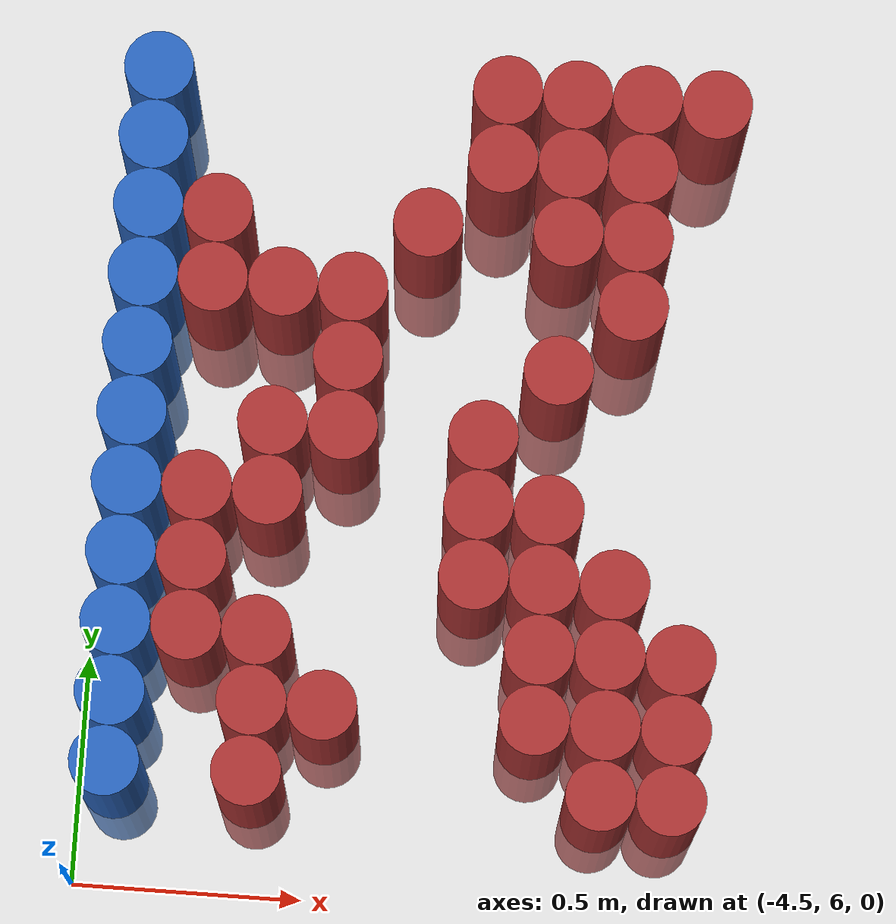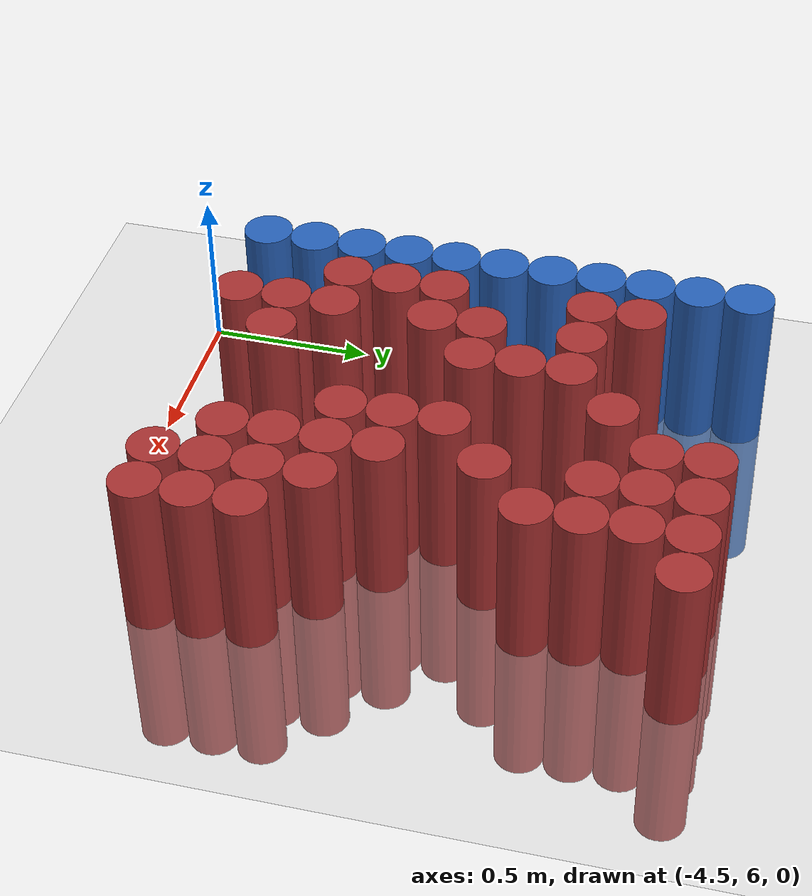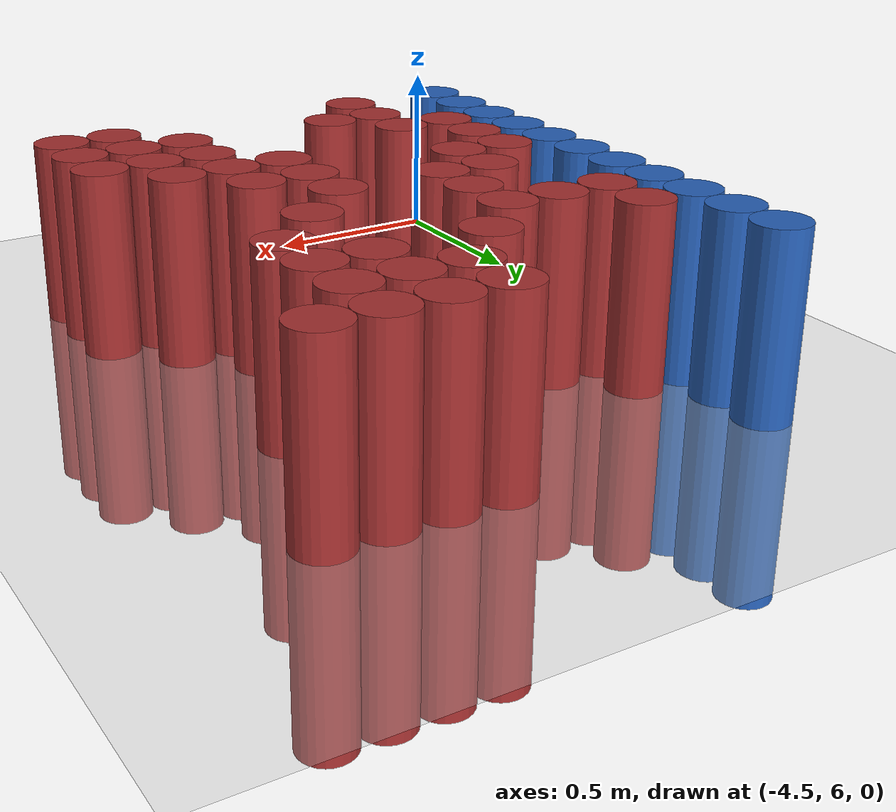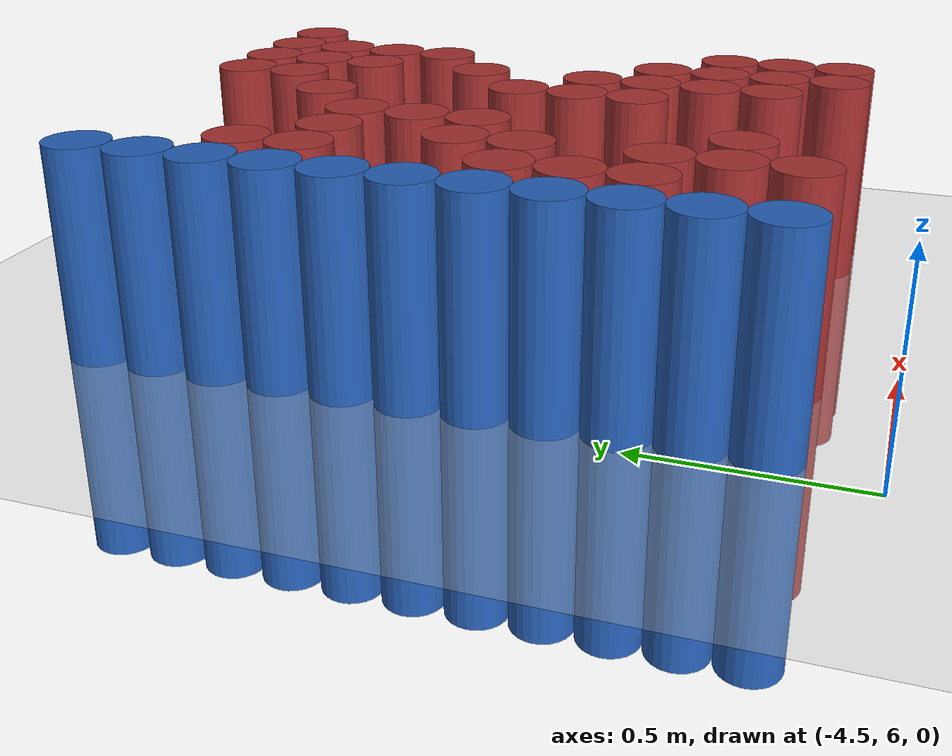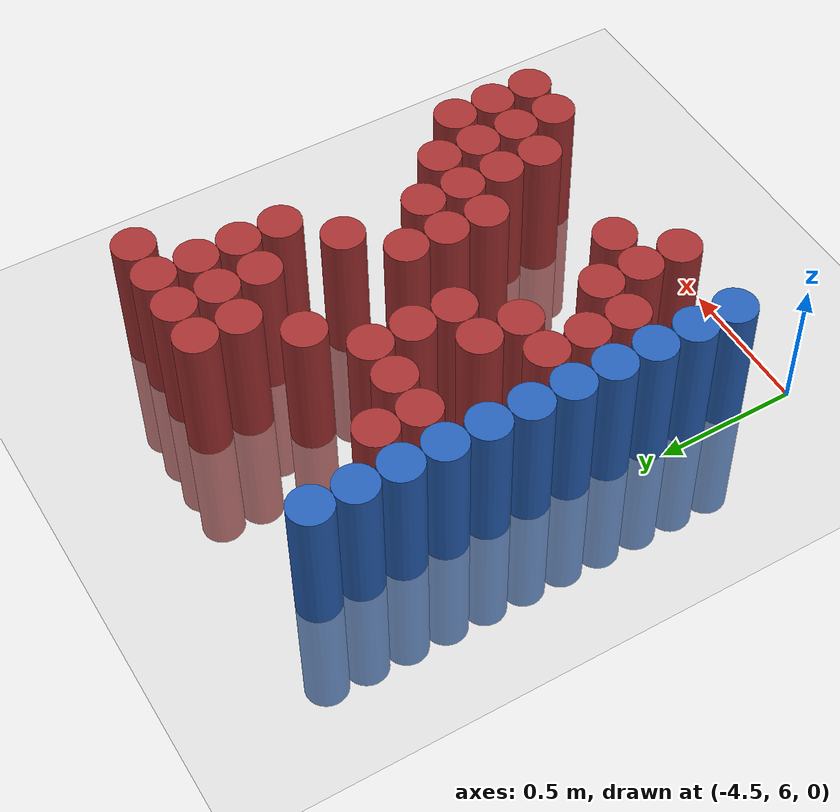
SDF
<sdf version="1.6">
 <world name="default">
  <model name="ground_plane">
   <static>1</static>
   <link name="link">
    <collision name="collision">
     <geometry><plane><normal>0 0 1</normal><size>100 100</size></plane></geometry>
     <surface><friction><ode><mu>100</mu><mu2>50</mu2></ode></friction></surface>
    </collision>
    <visual name="visual">
     <cast_shadows>0</cast_shadows>
     <geometry><plane><normal>0 0 1</normal><size>100 100</size></plane></geometry>
     <material>
      <script><uri>file://media/materials/scripts/gazebo.material</uri><name>Gazebo/Grey</name></script>
     </material>
    </visual>
   </link>
  </model>
  <model name="unit_cylinder_103">
   <static>1</static>
   <pose>-4.425000 6.225000 0.000000 0.000000 0.000000 0.000000</pose>
   <link name="link">
    <inertial>
     <mass>1</mass>
     <inertia><ixx>0.145833</ixx><ixy>0</ixy><ixz>0</ixz><iyy>0.145833</iyy><iyz>0</iyz><izz>0.125</izz></inertia>
    </inertial>
    <collision name="collision">
     <geometry><cylinder><radius>0.075000</radius><length>1</length></cylinder></geometry>
    </collision>
    <visual name="visual">
     <geometry><cylinder><radius>0.075000</radius><length>1</length></cylinder></geometry>
     <material>
      <ambient>0.152000 0.379000 0.720000 1</ambient>
      <diffuse>0.152000 0.379000 0.720000 1</diffuse>
     </material>
     <material>
      <script><name>Gazebo/Grey</name><uri>file://media/materials/scripts/gazebo.material</uri></script>
     </material>
    </visual>
   </link>
  </model>
  <model name="unit_cylinder_104">
   <static>1</static>
   <pose>-4.425000 6.375000 0.000000 0.000000 0.000000 0.000000</pose>
   <link name="link">
    <inertial>
     <mass>1</mass>
     <inertia><ixx>0.145833</ixx><ixy>0</ixy><ixz>0</ixz><iyy>0.145833</iyy><iyz>0</iyz><izz>0.125</izz></inertia>
    </inertial>
    <collision name="collision">
     <geometry><cylinder><radius>0.075000</radius><length>1</length></cylinder></geometry>
    </collision>
    <visual name="visual">
     <geometry><cylinder><radius>0.075000</radius><length>1</length></cylinder></geometry>
     <material>
      <ambient>0.152000 0.379000 0.720000 1</ambient>
      <diffuse>0.152000 0.379000 0.720000 1</diffuse>
     </material>
     <material>
      <script><name>Gazebo/Grey</name><uri>file://media/materials/scripts/gazebo.material</uri></script>
     </material>
    </visual>
   </link>
  </model>
  <model name="unit_cylinder_105">
   <static>1</static>
   <pose>-4.425000 6.525000 0.000000 0.000000 0.000000 0.000000</pose>
   <link name="link">
    <inertial>
     <mass>1</mass>
     <inertia><ixx>0.145833</ixx><ixy>0</ixy><ixz>0</ixz><iyy>0.145833</iyy><iyz>0</iyz><izz>0.125</izz></inertia>
    </inertial>
    <collision name="collision">
     <geometry><cylinder><radius>0.075000</radius><length>1</length></cylinder></geometry>
    </collision>
    <visual name="visual">
     <geometry><cylinder><radius>0.075000</radius><length>1</length></cylinder></geometry>
     <material>
      <ambient>0.152000 0.379000 0.720000 1</ambient>
      <diffuse>0.152000 0.379000 0.720000 1</diffuse>
     </material>
     <material>
      <script><name>Gazebo/Grey</name><uri>file://media/materials/scripts/gazebo.material</uri></script>
     </material>
    </visual>
   </link>
  </model>
  <model name="unit_cylinder_106">
   <static>1</static>
   <pose>-4.425000 6.675000 0.000000 0.000000 0.000000 0.000000</pose>
   <link name="link">
    <inertial>
     <mass>1</mass>
     <inertia><ixx>0.145833</ixx><ixy>0</ixy><ixz>0</ixz><iyy>0.145833</iyy><iyz>0</iyz><izz>0.125</izz></inertia>
    </inertial>
    <collision name="collision">
     <geometry><cylinder><radius>0.075000</radius><length>1</length></cylinder></geometry>
    </collision>
    <visual name="visual">
     <geometry><cylinder><radius>0.075000</radius><length>1</length></cylinder></geometry>
     <material>
      <ambient>0.152000 0.379000 0.720000 1</ambient>
      <diffuse>0.152000 0.379000 0.720000 1</diffuse>
     </material>
     <material>
      <script><name>Gazebo/Grey</name><uri>file://media/materials/scripts/gazebo.material</uri></script>
     </material>
    </visual>
   </link>
  </model>
  <model name="unit_cylinder_107">
   <static>1</static>
   <pose>-4.425000 6.825000 0.000000 0.000000 0.000000 0.000000</pose>
   <link name="link">
    <inertial>
     <mass>1</mass>
     <inertia><ixx>0.145833</ixx><ixy>0</ixy><ixz>0</ixz><iyy>0.145833</iyy><iyz>0</iyz><izz>0.125</izz></inertia>
    </inertial>
    <collision name="collision">
     <geometry><cylinder><radius>0.075000</radius><length>1</length></cylinder></geometry>
    </collision>
    <visual name="visual">
     <geometry><cylinder><radius>0.075000</radius><length>1</length></cylinder></geometry>
     <material>
      <ambient>0.152000 0.379000 0.720000 1</ambient>
      <diffuse>0.152000 0.379000 0.720000 1</diffuse>
     </material>
     <material>
      <script><name>Gazebo/Grey</name><uri>file://media/materials/scripts/gazebo.material</uri></script>
     </material>
    </visual>
   </link>
  </model>
  <model name="unit_cylinder_108">
   <static>1</static>
   <pose>-4.425000 6.975000 0.000000 0.000000 0.000000 0.000000</pose>
   <link name="link">
    <inertial>
     <mass>1</mass>
     <inertia><ixx>0.145833</ixx><ixy>0</ixy><ixz>0</ixz><iyy>0.145833</iyy><iyz>0</iyz><izz>0.125</izz></inertia>
    </inertial>
    <collision name="collision">
     <geometry><cylinder><radius>0.075000</radius><length>1</length></cylinder></geometry>
    </collision>
    <visual name="visual">
     <geometry><cylinder><radius>0.075000</radius><length>1</length></cylinder></geometry>
     <material>
      <ambient>0.152000 0.379000 0.720000 1</ambient>
      <diffuse>0.152000 0.379000 0.720000 1</diffuse>
     </material>
     <material>
      <script><name>Gazebo/Grey</name><uri>file://media/materials/scripts/gazebo.material</uri></script>
     </material>
    </visual>
   </link>
  </model>
  <model name="unit_cylinder_109">
   <static>1</static>
   <pose>-4.425000 7.125000 0.000000 0.000000 0.000000 0.000000</pose>
   <link name="link">
    <inertial>
     <mass>1</mass>
     <inertia><ixx>0.145833</ixx><ixy>0</ixy><ixz>0</ixz><iyy>0.145833</iyy><iyz>0</iyz><izz>0.125</izz></inertia>
    </inertial>
    <collision name="collision">
     <geometry><cylinder><radius>0.075000</radius><length>1</length></cylinder></geometry>
    </collision>
    <visual name="visual">
     <geometry><cylinder><radius>0.075000</radius><length>1</length></cylinder></geometry>
     <material>
      <ambient>0.152000 0.379000 0.720000 1</ambient>
      <diffuse>0.152000 0.379000 0.720000 1</diffuse>
     </material>
     <material>
      <script><name>Gazebo/Grey</name><uri>file://media/materials/scripts/gazebo.material</uri></script>
     </material>
    </visual>
   </link>
  </model>
  <model name="unit_cylinder_110">
   <static>1</static>
   <pose>-4.425000 7.275000 0.000000 0.000000 0.000000 0.000000</pose>
   <link name="link">
    <inertial>
     <mass>1</mass>
     <inertia><ixx>0.145833</ixx><ixy>0</ixy><ixz>0</ixz><iyy>0.145833</iyy><iyz>0</iyz><izz>0.125</izz></inertia>
    </inertial>
    <collision name="collision">
     <geometry><cylinder><radius>0.075000</radius><length>1</length></cylinder></geometry>
    </collision>
    <visual name="visual">
     <geometry><cylinder><radius>0.075000</radius><length>1</length></cylinder></geometry>
     <material>
      <ambient>0.152000 0.379000 0.720000 1</ambient>
      <diffuse>0.152000 0.379000 0.720000 1</diffuse>
     </material>
     <material>
      <script><name>Gazebo/Grey</name><uri>file://media/materials/scripts/gazebo.material</uri></script>
     </material>
    </visual>
   </link>
  </model>
  <model name="unit_cylinder_111">
   <static>1</static>
   <pose>-4.425000 7.425000 0.000000 0.000000 0.000000 0.000000</pose>
   <link name="link">
    <inertial>
     <mass>1</mass>
     <inertia><ixx>0.145833</ixx><ixy>0</ixy><ixz>0</ixz><iyy>0.145833</iyy><iyz>0</iyz><izz>0.125</izz></inertia>
    </inertial>
    <collision name="collision">
     <geometry><cylinder><radius>0.075000</radius><length>1</length></cylinder></geometry>
    </collision>
    <visual name="visual">
     <geometry><cylinder><radius>0.075000</radius><length>1</length></cylinder></geometry>
     <material>
      <ambient>0.152000 0.379000 0.720000 1</ambient>
      <diffuse>0.152000 0.379000 0.720000 1</diffuse>
     </material>
     <material>
      <script><name>Gazebo/Grey</name><uri>file://media/materials/scripts/gazebo.material</uri></script>
     </material>
    </visual>
   </link>
  </model>
  <model name="unit_cylinder_112">
   <static>1</static>
   <pose>-4.425000 7.575000 0.000000 0.000000 0.000000 0.000000</pose>
   <link name="link">
    <inertial>
     <mass>1</mass>
     <inertia><ixx>0.145833</ixx><ixy>0</ixy><ixz>0</ixz><iyy>0.145833</iyy><iyz>0</iyz><izz>0.125</izz></inertia>
    </inertial>
    <collision name="collision">
     <geometry><cylinder><radius>0.075000</radius><length>1</length></cylinder></geometry>
    </collision>
    <visual name="visual">
     <geometry><cylinder><radius>0.075000</radius><length>1</length></cylinder></geometry>
     <material>
      <ambient>0.152000 0.379000 0.720000 1</ambient>
      <diffuse>0.152000 0.379000 0.720000 1</diffuse>
     </material>
     <material>
      <script><name>Gazebo/Grey</name><uri>file://media/materials/scripts/gazebo.material</uri></script>
     </material>
    </visual>
   </link>
  </model>
  <model name="unit_cylinder_113">
   <static>1</static>
   <pose>-4.425000 7.725000 0.000000 0.000000 0.000000 0.000000</pose>
   <link name="link">
    <inertial>
     <mass>1</mass>
     <inertia><ixx>0.145833</ixx><ixy>0</ixy><ixz>0</ixz><iyy>0.145833</iyy><iyz>0</iyz><izz>0.125</izz></inertia>
    </inertial>
    <collision name="collision">
     <geometry><cylinder><radius>0.075000</radius><length>1</length></cylinder></geometry>
    </collision>
    <visual name="visual">
     <geometry><cylinder><radius>0.075000</radius><length>1</length></cylinder></geometry>
     <material>
      <ambient>0.152000 0.379000 0.720000 1</ambient>
      <diffuse>0.152000 0.379000 0.720000 1</diffuse>
     </material>
     <material>
      <script><name>Gazebo/Grey</name><uri>file://media/materials/scripts/gazebo.material</uri></script>
     </material>
    </visual>
   </link>
  </model>
  <model name="unit_cylinder_133">
   <static>1</static>
   <pose>-4.275000 6.525000 0.000000 0.000000 0.000000 0.000000</pose>
   <link name="link">
    <inertial>
     <mass>1</mass>
     <inertia><ixx>0.145833</ixx><ixy>0</ixy><ixz>0</ixz><iyy>0.145833</iyy><iyz>0</iyz><izz>0.125</izz></inertia>
    </inertial>
    <collision name="collision">
     <geometry><cylinder><radius>0.075000</radius><length>1</length></cylinder></geometry>
    </collision>
    <visual name="visual">
     <geometry><cylinder><radius>0.075000</radius><length>1</length></cylinder></geometry>
     <material>
      <ambient>0.648000 0.192000 0.192000 1</ambient>
      <diffuse>0.648000 0.192000 0.192000 1</diffuse>
     </material>
     <material>
      <script><name>Gazebo/Grey</name><uri>file://media/materials/scripts/gazebo.material</uri></script>
     </material>
    </visual>
   </link>
  </model>
  <model name="unit_cylinder_134">
   <static>1</static>
   <pose>-4.275000 6.675000 0.000000 0.000000 0.000000 0.000000</pose>
   <link name="link">
    <inertial>
     <mass>1</mass>
     <inertia><ixx>0.145833</ixx><ixy>0</ixy><ixz>0</ixz><iyy>0.145833</iyy><iyz>0</iyz><izz>0.125</izz></inertia>
    </inertial>
    <collision name="collision">
     <geometry><cylinder><radius>0.075000</radius><length>1</length></cylinder></geometry>
    </collision>
    <visual name="visual">
     <geometry><cylinder><radius>0.075000</radius><length>1</length></cylinder></geometry>
     <material>
      <ambient>0.648000 0.192000 0.192000 1</ambient>
      <diffuse>0.648000 0.192000 0.192000 1</diffuse>
     </material>
     <material>
      <script><name>Gazebo/Grey</name><uri>file://media/materials/scripts/gazebo.material</uri></script>
     </material>
    </visual>
   </link>
  </model>
  <model name="unit_cylinder_135">
   <static>1</static>
   <pose>-4.275000 6.825000 0.000000 0.000000 0.000000 0.000000</pose>
   <link name="link">
    <inertial>
     <mass>1</mass>
     <inertia><ixx>0.145833</ixx><ixy>0</ixy><ixz>0</ixz><iyy>0.145833</iyy><iyz>0</iyz><izz>0.125</izz></inertia>
    </inertial>
    <collision name="collision">
     <geometry><cylinder><radius>0.075000</radius><length>1</length></cylinder></geometry>
    </collision>
    <visual name="visual">
     <geometry><cylinder><radius>0.075000</radius><length>1</length></cylinder></geometry>
     <material>
      <ambient>0.648000 0.192000 0.192000 1</ambient>
      <diffuse>0.648000 0.192000 0.192000 1</diffuse>
     </material>
     <material>
      <script><name>Gazebo/Grey</name><uri>file://media/materials/scripts/gazebo.material</uri></script>
     </material>
    </visual>
   </link>
  </model>
  <model name="unit_cylinder_136">
   <static>1</static>
   <pose>-4.275000 7.275000 0.000000 0.000000 0.000000 0.000000</pose>
   <link name="link">
    <inertial>
     <mass>1</mass>
     <inertia><ixx>0.145833</ixx><ixy>0</ixy><ixz>0</ixz><iyy>0.145833</iyy><iyz>0</iyz><izz>0.125</izz></inertia>
    </inertial>
    <collision name="collision">
     <geometry><cylinder><radius>0.075000</radius><length>1</length></cylinder></geometry>
    </collision>
    <visual name="visual">
     <geometry><cylinder><radius>0.075000</radius><length>1</length></cylinder></geometry>
     <material>
      <ambient>0.648000 0.192000 0.192000 1</ambient>
      <diffuse>0.648000 0.192000 0.192000 1</diffuse>
     </material>
     <material>
      <script><name>Gazebo/Grey</name><uri>file://media/materials/scripts/gazebo.material</uri></script>
     </material>
    </visual>
   </link>
  </model>
  <model name="unit_cylinder_137">
   <static>1</static>
   <pose>-4.275000 7.425000 0.000000 0.000000 0.000000 0.000000</pose>
   <link name="link">
    <inertial>
     <mass>1</mass>
     <inertia><ixx>0.145833</ixx><ixy>0</ixy><ixz>0</ixz><iyy>0.145833</iyy><iyz>0</iyz><izz>0.125</izz></inertia>
    </inertial>
    <collision name="collision">
     <geometry><cylinder><radius>0.075000</radius><length>1</length></cylinder></geometry>
    </collision>
    <visual name="visual">
     <geometry><cylinder><radius>0.075000</radius><length>1</length></cylinder></geometry>
     <material>
      <ambient>0.648000 0.192000 0.192000 1</ambient>
      <diffuse>0.648000 0.192000 0.192000 1</diffuse>
     </material>
     <material>
      <script><name>Gazebo/Grey</name><uri>file://media/materials/scripts/gazebo.material</uri></script>
     </material>
    </visual>
   </link>
  </model>
  <model name="unit_cylinder_144">
   <static>1</static>
   <pose>-4.125000 6.225000 0.000000 0.000000 0.000000 0.000000</pose>
   <link name="link">
    <inertial>
     <mass>1</mass>
     <inertia><ixx>0.145833</ixx><ixy>0</ixy><ixz>0</ixz><iyy>0.145833</iyy><iyz>0</iyz><izz>0.125</izz></inertia>
    </inertial>
    <collision name="collision">
     <geometry><cylinder><radius>0.075000</radius><length>1</length></cylinder></geometry>
    </collision>
    <visual name="visual">
     <geometry><cylinder><radius>0.075000</radius><length>1</length></cylinder></geometry>
     <material>
      <ambient>0.648000 0.192000 0.192000 1</ambient>
      <diffuse>0.648000 0.192000 0.192000 1</diffuse>
     </material>
     <material>
      <script><name>Gazebo/Grey</name><uri>file://media/materials/scripts/gazebo.material</uri></script>
     </material>
    </visual>
   </link>
  </model>
  <model name="unit_cylinder_145">
   <static>1</static>
   <pose>-4.125000 6.375000 0.000000 0.000000 0.000000 0.000000</pose>
   <link name="link">
    <inertial>
     <mass>1</mass>
     <inertia><ixx>0.145833</ixx><ixy>0</ixy><ixz>0</ixz><iyy>0.145833</iyy><iyz>0</iyz><izz>0.125</izz></inertia>
    </inertial>
    <collision name="collision">
     <geometry><cylinder><radius>0.075000</radius><length>1</length></cylinder></geometry>
    </collision>
    <visual name="visual">
     <geometry><cylinder><radius>0.075000</radius><length>1</length></cylinder></geometry>
     <material>
      <ambient>0.648000 0.192000 0.192000 1</ambient>
      <diffuse>0.648000 0.192000 0.192000 1</diffuse>
     </material>
     <material>
      <script><name>Gazebo/Grey</name><uri>file://media/materials/scripts/gazebo.material</uri></script>
     </material>
    </visual>
   </link>
  </model>
  <model name="unit_cylinder_146">
   <static>1</static>
   <pose>-4.125000 6.525000 0.000000 0.000000 0.000000 0.000000</pose>
   <link name="link">
    <inertial>
     <mass>1</mass>
     <inertia><ixx>0.145833</ixx><ixy>0</ixy><ixz>0</ixz><iyy>0.145833</iyy><iyz>0</iyz><izz>0.125</izz></inertia>
    </inertial>
    <collision name="collision">
     <geometry><cylinder><radius>0.075000</radius><length>1</length></cylinder></geometry>
    </collision>
    <visual name="visual">
     <geometry><cylinder><radius>0.075000</radius><length>1</length></cylinder></geometry>
     <material>
      <ambient>0.648000 0.192000 0.192000 1</ambient>
      <diffuse>0.648000 0.192000 0.192000 1</diffuse>
     </material>
     <material>
      <script><name>Gazebo/Grey</name><uri>file://media/materials/scripts/gazebo.material</uri></script>
     </material>
    </visual>
   </link>
  </model>
  <model name="unit_cylinder_147">
   <static>1</static>
   <pose>-4.125000 6.825000 0.000000 0.000000 0.000000 0.000000</pose>
   <link name="link">
    <inertial>
     <mass>1</mass>
     <inertia><ixx>0.145833</ixx><ixy>0</ixy><ixz>0</ixz><iyy>0.145833</iyy><iyz>0</iyz><izz>0.125</izz></inertia>
    </inertial>
    <collision name="collision">
     <geometry><cylinder><radius>0.075000</radius><length>1</length></cylinder></geometry>
    </collision>
    <visual name="visual">
     <geometry><cylinder><radius>0.075000</radius><length>1</length></cylinder></geometry>
     <material>
      <ambient>0.648000 0.192000 0.192000 1</ambient>
      <diffuse>0.648000 0.192000 0.192000 1</diffuse>
     </material>
     <material>
      <script><name>Gazebo/Grey</name><uri>file://media/materials/scripts/gazebo.material</uri></script>
     </material>
    </visual>
   </link>
  </model>
  <model name="unit_cylinder_148">
   <static>1</static>
   <pose>-4.125000 6.975000 0.000000 0.000000 0.000000 0.000000</pose>
   <link name="link">
    <inertial>
     <mass>1</mass>
     <inertia><ixx>0.145833</ixx><ixy>0</ixy><ixz>0</ixz><iyy>0.145833</iyy><iyz>0</iyz><izz>0.125</izz></inertia>
    </inertial>
    <collision name="collision">
     <geometry><cylinder><radius>0.075000</radius><length>1</length></cylinder></geometry>
    </collision>
    <visual name="visual">
     <geometry><cylinder><radius>0.075000</radius><length>1</length></cylinder></geometry>
     <material>
      <ambient>0.648000 0.192000 0.192000 1</ambient>
      <diffuse>0.648000 0.192000 0.192000 1</diffuse>
     </material>
     <material>
      <script><name>Gazebo/Grey</name><uri>file://media/materials/scripts/gazebo.material</uri></script>
     </material>
    </visual>
   </link>
  </model>
  <model name="unit_cylinder_149">
   <static>1</static>
   <pose>-4.125000 7.275000 0.000000 0.000000 0.000000 0.000000</pose>
   <link name="link">
    <inertial>
     <mass>1</mass>
     <inertia><ixx>0.145833</ixx><ixy>0</ixy><ixz>0</ixz><iyy>0.145833</iyy><iyz>0</iyz><izz>0.125</izz></inertia>
    </inertial>
    <collision name="collision">
     <geometry><cylinder><radius>0.075000</radius><length>1</length></cylinder></geometry>
    </collision>
    <visual name="visual">
     <geometry><cylinder><radius>0.075000</radius><length>1</length></cylinder></geometry>
     <material>
      <ambient>0.648000 0.192000 0.192000 1</ambient>
      <diffuse>0.648000 0.192000 0.192000 1</diffuse>
     </material>
     <material>
      <script><name>Gazebo/Grey</name><uri>file://media/materials/scripts/gazebo.material</uri></script>
     </material>
    </visual>
   </link>
  </model>
  <model name="unit_cylinder_152">
   <static>1</static>
   <pose>-3.975000 6.375000 0.000000 0.000000 0.000000 0.000000</pose>
   <link name="link">
    <inertial>
     <mass>1</mass>
     <inertia><ixx>0.145833</ixx><ixy>0</ixy><ixz>0</ixz><iyy>0.145833</iyy><iyz>0</iyz><izz>0.125</izz></inertia>
    </inertial>
    <collision name="collision">
     <geometry><cylinder><radius>0.075000</radius><length>1</length></cylinder></geometry>
    </collision>
    <visual name="visual">
     <geometry><cylinder><radius>0.075000</radius><length>1</length></cylinder></geometry>
     <material>
      <ambient>0.648000 0.192000 0.192000 1</ambient>
      <diffuse>0.648000 0.192000 0.192000 1</diffuse>
     </material>
     <material>
      <script><name>Gazebo/Grey</name><uri>file://media/materials/scripts/gazebo.material</uri></script>
     </material>
    </visual>
   </link>
  </model>
  <model name="unit_cylinder_153">
   <static>1</static>
   <pose>-3.975000 6.975000 0.000000 0.000000 0.000000 0.000000</pose>
   <link name="link">
    <inertial>
     <mass>1</mass>
     <inertia><ixx>0.145833</ixx><ixy>0</ixy><ixz>0</ixz><iyy>0.145833</iyy><iyz>0</iyz><izz>0.125</izz></inertia>
    </inertial>
    <collision name="collision">
     <geometry><cylinder><radius>0.075000</radius><length>1</length></cylinder></geometry>
    </collision>
    <visual name="visual">
     <geometry><cylinder><radius>0.075000</radius><length>1</length></cylinder></geometry>
     <material>
      <ambient>0.648000 0.192000 0.192000 1</ambient>
      <diffuse>0.648000 0.192000 0.192000 1</diffuse>
     </material>
     <material>
      <script><name>Gazebo/Grey</name><uri>file://media/materials/scripts/gazebo.material</uri></script>
     </material>
    </visual>
   </link>
  </model>
  <model name="unit_cylinder_154">
   <static>1</static>
   <pose>-3.975000 7.125000 0.000000 0.000000 0.000000 0.000000</pose>
   <link name="link">
    <inertial>
     <mass>1</mass>
     <inertia><ixx>0.145833</ixx><ixy>0</ixy><ixz>0</ixz><iyy>0.145833</iyy><iyz>0</iyz><izz>0.125</izz></inertia>
    </inertial>
    <collision name="collision">
     <geometry><cylinder><radius>0.075000</radius><length>1</length></cylinder></geometry>
    </collision>
    <visual name="visual">
     <geometry><cylinder><radius>0.075000</radius><length>1</length></cylinder></geometry>
     <material>
      <ambient>0.648000 0.192000 0.192000 1</ambient>
      <diffuse>0.648000 0.192000 0.192000 1</diffuse>
     </material>
     <material>
      <script><name>Gazebo/Grey</name><uri>file://media/materials/scripts/gazebo.material</uri></script>
     </material>
    </visual>
   </link>
  </model>
  <model name="unit_cylinder_155">
   <static>1</static>
   <pose>-3.975000 7.275000 0.000000 0.000000 0.000000 0.000000</pose>
   <link name="link">
    <inertial>
     <mass>1</mass>
     <inertia><ixx>0.145833</ixx><ixy>0</ixy><ixz>0</ixz><iyy>0.145833</iyy><iyz>0</iyz><izz>0.125</izz></inertia>
    </inertial>
    <collision name="collision">
     <geometry><cylinder><radius>0.075000</radius><length>1</length></cylinder></geometry>
    </collision>
    <visual name="visual">
     <geometry><cylinder><radius>0.075000</radius><length>1</length></cylinder></geometry>
     <material>
      <ambient>0.648000 0.192000 0.192000 1</ambient>
      <diffuse>0.648000 0.192000 0.192000 1</diffuse>
     </material>
     <material>
      <script><name>Gazebo/Grey</name><uri>file://media/materials/scripts/gazebo.material</uri></script>
     </material>
    </visual>
   </link>
  </model>
  <model name="unit_cylinder_160">
   <static>1</static>
   <pose>-3.825000 7.425000 0.000000 0.000000 0.000000 0.000000</pose>
   <link name="link">
    <inertial>
     <mass>1</mass>
     <inertia><ixx>0.145833</ixx><ixy>0</ixy><ixz>0</ixz><iyy>0.145833</iyy><iyz>0</iyz><izz>0.125</izz></inertia>
    </inertial>
    <collision name="collision">
     <geometry><cylinder><radius>0.075000</radius><length>1</length></cylinder></geometry>
    </collision>
    <visual name="visual">
     <geometry><cylinder><radius>0.075000</radius><length>1</length></cylinder></geometry>
     <material>
      <ambient>0.648000 0.192000 0.192000 1</ambient>
      <diffuse>0.648000 0.192000 0.192000 1</diffuse>
     </material>
     <material>
      <script><name>Gazebo/Grey</name><uri>file://media/materials/scripts/gazebo.material</uri></script>
     </material>
    </visual>
   </link>
  </model>
  <model name="unit_cylinder_165">
   <static>1</static>
   <pose>-3.675000 6.675000 0.000000 0.000000 0.000000 0.000000</pose>
   <link name="link">
    <inertial>
     <mass>1</mass>
     <inertia><ixx>0.145833</ixx><ixy>0</ixy><ixz>0</ixz><iyy>0.145833</iyy><iyz>0</iyz><izz>0.125</izz></inertia>
    </inertial>
    <collision name="collision">
     <geometry><cylinder><radius>0.075000</radius><length>1</length></cylinder></geometry>
    </collision>
    <visual name="visual">
     <geometry><cylinder><radius>0.075000</radius><length>1</length></cylinder></geometry>
     <material>
      <ambient>0.648000 0.192000 0.192000 1</ambient>
      <diffuse>0.648000 0.192000 0.192000 1</diffuse>
     </material>
     <material>
      <script><name>Gazebo/Grey</name><uri>file://media/materials/scripts/gazebo.material</uri></script>
     </material>
    </visual>
   </link>
  </model>
  <model name="unit_cylinder_166">
   <static>1</static>
   <pose>-3.675000 6.825000 0.000000 0.000000 0.000000 0.000000</pose>
   <link name="link">
    <inertial>
     <mass>1</mass>
     <inertia><ixx>0.145833</ixx><ixy>0</ixy><ixz>0</ixz><iyy>0.145833</iyy><iyz>0</iyz><izz>0.125</izz></inertia>
    </inertial>
    <collision name="collision">
     <geometry><cylinder><radius>0.075000</radius><length>1</length></cylinder></geometry>
    </collision>
    <visual name="visual">
     <geometry><cylinder><radius>0.075000</radius><length>1</length></cylinder></geometry>
     <material>
      <ambient>0.648000 0.192000 0.192000 1</ambient>
      <diffuse>0.648000 0.192000 0.192000 1</diffuse>
     </material>
     <material>
      <script><name>Gazebo/Grey</name><uri>file://media/materials/scripts/gazebo.material</uri></script>
     </material>
    </visual>
   </link>
  </model>
  <model name="unit_cylinder_167">
   <static>1</static>
   <pose>-3.675000 6.975000 0.000000 0.000000 0.000000 0.000000</pose>
   <link name="link">
    <inertial>
     <mass>1</mass>
     <inertia><ixx>0.145833</ixx><ixy>0</ixy><ixz>0</ixz><iyy>0.145833</iyy><iyz>0</iyz><izz>0.125</izz></inertia>
    </inertial>
    <collision name="collision">
     <geometry><cylinder><radius>0.075000</radius><length>1</length></cylinder></geometry>
    </collision>
    <visual name="visual">
     <geometry><cylinder><radius>0.075000</radius><length>1</length></cylinder></geometry>
     <material>
      <ambient>0.648000 0.192000 0.192000 1</ambient>
      <diffuse>0.648000 0.192000 0.192000 1</diffuse>
     </material>
     <material>
      <script><name>Gazebo/Grey</name><uri>file://media/materials/scripts/gazebo.material</uri></script>
     </material>
    </visual>
   </link>
  </model>
  <model name="unit_cylinder_168">
   <static>1</static>
   <pose>-3.675000 7.575000 0.000000 0.000000 0.000000 0.000000</pose>
   <link name="link">
    <inertial>
     <mass>1</mass>
     <inertia><ixx>0.145833</ixx><ixy>0</ixy><ixz>0</ixz><iyy>0.145833</iyy><iyz>0</iyz><izz>0.125</izz></inertia>
    </inertial>
    <collision name="collision">
     <geometry><cylinder><radius>0.075000</radius><length>1</length></cylinder></geometry>
    </collision>
    <visual name="visual">
     <geometry><cylinder><radius>0.075000</radius><length>1</length></cylinder></geometry>
     <material>
      <ambient>0.648000 0.192000 0.192000 1</ambient>
      <diffuse>0.648000 0.192000 0.192000 1</diffuse>
     </material>
     <material>
      <script><name>Gazebo/Grey</name><uri>file://media/materials/scripts/gazebo.material</uri></script>
     </material>
    </visual>
   </link>
  </model>
  <model name="unit_cylinder_169">
   <static>1</static>
   <pose>-3.675000 7.725000 0.000000 0.000000 0.000000 0.000000</pose>
   <link name="link">
    <inertial>
     <mass>1</mass>
     <inertia><ixx>0.145833</ixx><ixy>0</ixy><ixz>0</ixz><iyy>0.145833</iyy><iyz>0</iyz><izz>0.125</izz></inertia>
    </inertial>
    <collision name="collision">
     <geometry><cylinder><radius>0.075000</radius><length>1</length></cylinder></geometry>
    </collision>
    <visual name="visual">
     <geometry><cylinder><radius>0.075000</radius><length>1</length></cylinder></geometry>
     <material>
      <ambient>0.648000 0.192000 0.192000 1</ambient>
      <diffuse>0.648000 0.192000 0.192000 1</diffuse>
     </material>
     <material>
      <script><name>Gazebo/Grey</name><uri>file://media/materials/scripts/gazebo.material</uri></script>
     </material>
    </visual>
   </link>
  </model>
  <model name="unit_cylinder_174">
   <static>1</static>
   <pose>-3.525000 6.375000 0.000000 0.000000 0.000000 0.000000</pose>
   <link name="link">
    <inertial>
     <mass>1</mass>
     <inertia><ixx>0.145833</ixx><ixy>0</ixy><ixz>0</ixz><iyy>0.145833</iyy><iyz>0</iyz><izz>0.125</izz></inertia>
    </inertial>
    <collision name="collision">
     <geometry><cylinder><radius>0.075000</radius><length>1</length></cylinder></geometry>
    </collision>
    <visual name="visual">
     <geometry><cylinder><radius>0.075000</radius><length>1</length></cylinder></geometry>
     <material>
      <ambient>0.648000 0.192000 0.192000 1</ambient>
      <diffuse>0.648000 0.192000 0.192000 1</diffuse>
     </material>
     <material>
      <script><name>Gazebo/Grey</name><uri>file://media/materials/scripts/gazebo.material</uri></script>
     </material>
    </visual>
   </link>
  </model>
  <model name="unit_cylinder_175">
   <static>1</static>
   <pose>-3.525000 6.525000 0.000000 0.000000 0.000000 0.000000</pose>
   <link name="link">
    <inertial>
     <mass>1</mass>
     <inertia><ixx>0.145833</ixx><ixy>0</ixy><ixz>0</ixz><iyy>0.145833</iyy><iyz>0</iyz><izz>0.125</izz></inertia>
    </inertial>
    <collision name="collision">
     <geometry><cylinder><radius>0.075000</radius><length>1</length></cylinder></geometry>
    </collision>
    <visual name="visual">
     <geometry><cylinder><radius>0.075000</radius><length>1</length></cylinder></geometry>
     <material>
      <ambient>0.648000 0.192000 0.192000 1</ambient>
      <diffuse>0.648000 0.192000 0.192000 1</diffuse>
     </material>
     <material>
      <script><name>Gazebo/Grey</name><uri>file://media/materials/scripts/gazebo.material</uri></script>
     </material>
    </visual>
   </link>
  </model>
  <model name="unit_cylinder_176">
   <static>1</static>
   <pose>-3.525000 6.675000 0.000000 0.000000 0.000000 0.000000</pose>
   <link name="link">
    <inertial>
     <mass>1</mass>
     <inertia><ixx>0.145833</ixx><ixy>0</ixy><ixz>0</ixz><iyy>0.145833</iyy><iyz>0</iyz><izz>0.125</izz></inertia>
    </inertial>
    <collision name="collision">
     <geometry><cylinder><radius>0.075000</radius><length>1</length></cylinder></geometry>
    </collision>
    <visual name="visual">
     <geometry><cylinder><radius>0.075000</radius><length>1</length></cylinder></geometry>
     <material>
      <ambient>0.648000 0.192000 0.192000 1</ambient>
      <diffuse>0.648000 0.192000 0.192000 1</diffuse>
     </material>
     <material>
      <script><name>Gazebo/Grey</name><uri>file://media/materials/scripts/gazebo.material</uri></script>
     </material>
    </visual>
   </link>
  </model>
  <model name="unit_cylinder_177">
   <static>1</static>
   <pose>-3.525000 6.825000 0.000000 0.000000 0.000000 0.000000</pose>
   <link name="link">
    <inertial>
     <mass>1</mass>
     <inertia><ixx>0.145833</ixx><ixy>0</ixy><ixz>0</ixz><iyy>0.145833</iyy><iyz>0</iyz><izz>0.125</izz></inertia>
    </inertial>
    <collision name="collision">
     <geometry><cylinder><radius>0.075000</radius><length>1</length></cylinder></geometry>
    </collision>
    <visual name="visual">
     <geometry><cylinder><radius>0.075000</radius><length>1</length></cylinder></geometry>
     <material>
      <ambient>0.648000 0.192000 0.192000 1</ambient>
      <diffuse>0.648000 0.192000 0.192000 1</diffuse>
     </material>
     <material>
      <script><name>Gazebo/Grey</name><uri>file://media/materials/scripts/gazebo.material</uri></script>
     </material>
    </visual>
   </link>
  </model>
  <model name="unit_cylinder_178">
   <static>1</static>
   <pose>-3.525000 7.125000 0.000000 0.000000 0.000000 0.000000</pose>
   <link name="link">
    <inertial>
     <mass>1</mass>
     <inertia><ixx>0.145833</ixx><ixy>0</ixy><ixz>0</ixz><iyy>0.145833</iyy><iyz>0</iyz><izz>0.125</izz></inertia>
    </inertial>
    <collision name="collision">
     <geometry><cylinder><radius>0.075000</radius><length>1</length></cylinder></geometry>
    </collision>
    <visual name="visual">
     <geometry><cylinder><radius>0.075000</radius><length>1</length></cylinder></geometry>
     <material>
      <ambient>0.648000 0.192000 0.192000 1</ambient>
      <diffuse>0.648000 0.192000 0.192000 1</diffuse>
     </material>
     <material>
      <script><name>Gazebo/Grey</name><uri>file://media/materials/scripts/gazebo.material</uri></script>
     </material>
    </visual>
   </link>
  </model>
  <model name="unit_cylinder_179">
   <static>1</static>
   <pose>-3.525000 7.425000 0.000000 0.000000 0.000000 0.000000</pose>
   <link name="link">
    <inertial>
     <mass>1</mass>
     <inertia><ixx>0.145833</ixx><ixy>0</ixy><ixz>0</ixz><iyy>0.145833</iyy><iyz>0</iyz><izz>0.125</izz></inertia>
    </inertial>
    <collision name="collision">
     <geometry><cylinder><radius>0.075000</radius><length>1</length></cylinder></geometry>
    </collision>
    <visual name="visual">
     <geometry><cylinder><radius>0.075000</radius><length>1</length></cylinder></geometry>
     <material>
      <ambient>0.648000 0.192000 0.192000 1</ambient>
      <diffuse>0.648000 0.192000 0.192000 1</diffuse>
     </material>
     <material>
      <script><name>Gazebo/Grey</name><uri>file://media/materials/scripts/gazebo.material</uri></script>
     </material>
    </visual>
   </link>
  </model>
  <model name="unit_cylinder_180">
   <static>1</static>
   <pose>-3.525000 7.575000 0.000000 0.000000 0.000000 0.000000</pose>
   <link name="link">
    <inertial>
     <mass>1</mass>
     <inertia><ixx>0.145833</ixx><ixy>0</ixy><ixz>0</ixz><iyy>0.145833</iyy><iyz>0</iyz><izz>0.125</izz></inertia>
    </inertial>
    <collision name="collision">
     <geometry><cylinder><radius>0.075000</radius><length>1</length></cylinder></geometry>
    </collision>
    <visual name="visual">
     <geometry><cylinder><radius>0.075000</radius><length>1</length></cylinder></geometry>
     <material>
      <ambient>0.648000 0.192000 0.192000 1</ambient>
      <diffuse>0.648000 0.192000 0.192000 1</diffuse>
     </material>
     <material>
      <script><name>Gazebo/Grey</name><uri>file://media/materials/scripts/gazebo.material</uri></script>
     </material>
    </visual>
   </link>
  </model>
  <model name="unit_cylinder_181">
   <static>1</static>
   <pose>-3.525000 7.725000 0.000000 0.000000 0.000000 0.000000</pose>
   <link name="link">
    <inertial>
     <mass>1</mass>
     <inertia><ixx>0.145833</ixx><ixy>0</ixy><ixz>0</ixz><iyy>0.145833</iyy><iyz>0</iyz><izz>0.125</izz></inertia>
    </inertial>
    <collision name="collision">
     <geometry><cylinder><radius>0.075000</radius><length>1</length></cylinder></geometry>
    </collision>
    <visual name="visual">
     <geometry><cylinder><radius>0.075000</radius><length>1</length></cylinder></geometry>
     <material>
      <ambient>0.648000 0.192000 0.192000 1</ambient>
      <diffuse>0.648000 0.192000 0.192000 1</diffuse>
     </material>
     <material>
      <script><name>Gazebo/Grey</name><uri>file://media/materials/scripts/gazebo.material</uri></script>
     </material>
    </visual>
   </link>
  </model>
  <model name="unit_cylinder_186">
   <static>1</static>
   <pose>-3.375000 6.225000 0.000000 0.000000 0.000000 0.000000</pose>
   <link name="link">
    <inertial>
     <mass>1</mass>
     <inertia><ixx>0.145833</ixx><ixy>0</ixy><ixz>0</ixz><iyy>0.145833</iyy><iyz>0</iyz><izz>0.125</izz></inertia>
    </inertial>
    <collision name="collision">
     <geometry><cylinder><radius>0.075000</radius><length>1</length></cylinder></geometry>
    </collision>
    <visual name="visual">
     <geometry><cylinder><radius>0.075000</radius><length>1</length></cylinder></geometry>
     <material>
      <ambient>0.648000 0.192000 0.192000 1</ambient>
      <diffuse>0.648000 0.192000 0.192000 1</diffuse>
     </material>
     <material>
      <script><name>Gazebo/Grey</name><uri>file://media/materials/scripts/gazebo.material</uri></script>
     </material>
    </visual>
   </link>
  </model>
  <model name="unit_cylinder_187">
   <static>1</static>
   <pose>-3.375000 6.375000 0.000000 0.000000 0.000000 0.000000</pose>
   <link name="link">
    <inertial>
     <mass>1</mass>
     <inertia><ixx>0.145833</ixx><ixy>0</ixy><ixz>0</ixz><iyy>0.145833</iyy><iyz>0</iyz><izz>0.125</izz></inertia>
    </inertial>
    <collision name="collision">
     <geometry><cylinder><radius>0.075000</radius><length>1</length></cylinder></geometry>
    </collision>
    <visual name="visual">
     <geometry><cylinder><radius>0.075000</radius><length>1</length></cylinder></geometry>
     <material>
      <ambient>0.648000 0.192000 0.192000 1</ambient>
      <diffuse>0.648000 0.192000 0.192000 1</diffuse>
     </material>
     <material>
      <script><name>Gazebo/Grey</name><uri>file://media/materials/scripts/gazebo.material</uri></script>
     </material>
    </visual>
   </link>
  </model>
  <model name="unit_cylinder_188">
   <static>1</static>
   <pose>-3.375000 6.525000 0.000000 0.000000 0.000000 0.000000</pose>
   <link name="link">
    <inertial>
     <mass>1</mass>
     <inertia><ixx>0.145833</ixx><ixy>0</ixy><ixz>0</ixz><iyy>0.145833</iyy><iyz>0</iyz><izz>0.125</izz></inertia>
    </inertial>
    <collision name="collision">
     <geometry><cylinder><radius>0.075000</radius><length>1</length></cylinder></geometry>
    </collision>
    <visual name="visual">
     <geometry><cylinder><radius>0.075000</radius><length>1</length></cylinder></geometry>
     <material>
      <ambient>0.648000 0.192000 0.192000 1</ambient>
      <diffuse>0.648000 0.192000 0.192000 1</diffuse>
     </material>
     <material>
      <script><name>Gazebo/Grey</name><uri>file://media/materials/scripts/gazebo.material</uri></script>
     </material>
    </visual>
   </link>
  </model>
  <model name="unit_cylinder_189">
   <static>1</static>
   <pose>-3.375000 6.675000 0.000000 0.000000 0.000000 0.000000</pose>
   <link name="link">
    <inertial>
     <mass>1</mass>
     <inertia><ixx>0.145833</ixx><ixy>0</ixy><ixz>0</ixz><iyy>0.145833</iyy><iyz>0</iyz><izz>0.125</izz></inertia>
    </inertial>
    <collision name="collision">
     <geometry><cylinder><radius>0.075000</radius><length>1</length></cylinder></geometry>
    </collision>
    <visual name="visual">
     <geometry><cylinder><radius>0.075000</radius><length>1</length></cylinder></geometry>
     <material>
      <ambient>0.648000 0.192000 0.192000 1</ambient>
      <diffuse>0.648000 0.192000 0.192000 1</diffuse>
     </material>
     <material>
      <script><name>Gazebo/Grey</name><uri>file://media/materials/scripts/gazebo.material</uri></script>
     </material>
    </visual>
   </link>
  </model>
  <model name="unit_cylinder_190">
   <static>1</static>
   <pose>-3.375000 7.275000 0.000000 0.000000 0.000000 0.000000</pose>
   <link name="link">
    <inertial>
     <mass>1</mass>
     <inertia><ixx>0.145833</ixx><ixy>0</ixy><ixz>0</ixz><iyy>0.145833</iyy><iyz>0</iyz><izz>0.125</izz></inertia>
    </inertial>
    <collision name="collision">
     <geometry><cylinder><radius>0.075000</radius><length>1</length></cylinder></geometry>
    </collision>
    <visual name="visual">
     <geometry><cylinder><radius>0.075000</radius><length>1</length></cylinder></geometry>
     <material>
      <ambient>0.648000 0.192000 0.192000 1</ambient>
      <diffuse>0.648000 0.192000 0.192000 1</diffuse>
     </material>
     <material>
      <script><name>Gazebo/Grey</name><uri>file://media/materials/scripts/gazebo.material</uri></script>
     </material>
    </visual>
   </link>
  </model>
  <model name="unit_cylinder_191">
   <static>1</static>
   <pose>-3.375000 7.425000 0.000000 0.000000 0.000000 0.000000</pose>
   <link name="link">
    <inertial>
     <mass>1</mass>
     <inertia><ixx>0.145833</ixx><ixy>0</ixy><ixz>0</ixz><iyy>0.145833</iyy><iyz>0</iyz><izz>0.125</izz></inertia>
    </inertial>
    <collision name="collision">
     <geometry><cylinder><radius>0.075000</radius><length>1</length></cylinder></geometry>
    </collision>
    <visual name="visual">
     <geometry><cylinder><radius>0.075000</radius><length>1</length></cylinder></geometry>
     <material>
      <ambient>0.648000 0.192000 0.192000 1</ambient>
      <diffuse>0.648000 0.192000 0.192000 1</diffuse>
     </material>
     <material>
      <script><name>Gazebo/Grey</name><uri>file://media/materials/scripts/gazebo.material</uri></script>
     </material>
    </visual>
   </link>
  </model>
  <model name="unit_cylinder_192">
   <static>1</static>
   <pose>-3.375000 7.575000 0.000000 0.000000 0.000000 0.000000</pose>
   <link name="link">
    <inertial>
     <mass>1</mass>
     <inertia><ixx>0.145833</ixx><ixy>0</ixy><ixz>0</ixz><iyy>0.145833</iyy><iyz>0</iyz><izz>0.125</izz></inertia>
    </inertial>
    <collision name="collision">
     <geometry><cylinder><radius>0.075000</radius><length>1</length></cylinder></geometry>
    </collision>
    <visual name="visual">
     <geometry><cylinder><radius>0.075000</radius><length>1</length></cylinder></geometry>
     <material>
      <ambient>0.648000 0.192000 0.192000 1</ambient>
      <diffuse>0.648000 0.192000 0.192000 1</diffuse>
     </material>
     <material>
      <script><name>Gazebo/Grey</name><uri>file://media/materials/scripts/gazebo.material</uri></script>
     </material>
    </visual>
   </link>
  </model>
  <model name="unit_cylinder_193">
   <static>1</static>
   <pose>-3.375000 7.725000 0.000000 0.000000 0.000000 0.000000</pose>
   <link name="link">
    <inertial>
     <mass>1</mass>
     <inertia><ixx>0.145833</ixx><ixy>0</ixy><ixz>0</ixz><iyy>0.145833</iyy><iyz>0</iyz><izz>0.125</izz></inertia>
    </inertial>
    <collision name="collision">
     <geometry><cylinder><radius>0.075000</radius><length>1</length></cylinder></geometry>
    </collision>
    <visual name="visual">
     <geometry><cylinder><radius>0.075000</radius><length>1</length></cylinder></geometry>
     <material>
      <ambient>0.648000 0.192000 0.192000 1</ambient>
      <diffuse>0.648000 0.192000 0.192000 1</diffuse>
     </material>
     <material>
      <script><name>Gazebo/Grey</name><uri>file://media/materials/scripts/gazebo.material</uri></script>
     </material>
    </visual>
   </link>
  </model>
  <model name="unit_cylinder_198">
   <static>1</static>
   <pose>-3.225000 6.225000 0.000000 0.000000 0.000000 0.000000</pose>
   <link name="link">
    <inertial>
     <mass>1</mass>
     <inertia><ixx>0.145833</ixx><ixy>0</ixy><ixz>0</ixz><iyy>0.145833</iyy><iyz>0</iyz><izz>0.125</izz></inertia>
    </inertial>
    <collision name="collision">
     <geometry><cylinder><radius>0.075000</radius><length>1</length></cylinder></geometry>
    </collision>
    <visual name="visual">
     <geometry><cylinder><radius>0.075000</radius><length>1</length></cylinder></geometry>
     <material>
      <ambient>0.648000 0.192000 0.192000 1</ambient>
      <diffuse>0.648000 0.192000 0.192000 1</diffuse>
     </material>
     <material>
      <script><name>Gazebo/Grey</name><uri>file://media/materials/scripts/gazebo.material</uri></script>
     </material>
    </visual>
   </link>
  </model>
  <model name="unit_cylinder_199">
   <static>1</static>
   <pose>-3.225000 6.375000 0.000000 0.000000 0.000000 0.000000</pose>
   <link name="link">
    <inertial>
     <mass>1</mass>
     <inertia><ixx>0.145833</ixx><ixy>0</ixy><ixz>0</ixz><iyy>0.145833</iyy><iyz>0</iyz><izz>0.125</izz></inertia>
    </inertial>
    <collision name="collision">
     <geometry><cylinder><radius>0.075000</radius><length>1</length></cylinder></geometry>
    </collision>
    <visual name="visual">
     <geometry><cylinder><radius>0.075000</radius><length>1</length></cylinder></geometry>
     <material>
      <ambient>0.648000 0.192000 0.192000 1</ambient>
      <diffuse>0.648000 0.192000 0.192000 1</diffuse>
     </material>
     <material>
      <script><name>Gazebo/Grey</name><uri>file://media/materials/scripts/gazebo.material</uri></script>
     </material>
    </visual>
   </link>
  </model>
  <model name="unit_cylinder_200">
   <static>1</static>
   <pose>-3.225000 6.525000 0.000000 0.000000 0.000000 0.000000</pose>
   <link name="link">
    <inertial>
     <mass>1</mass>
     <inertia><ixx>0.145833</ixx><ixy>0</ixy><ixz>0</ixz><iyy>0.145833</iyy><iyz>0</iyz><izz>0.125</izz></inertia>
    </inertial>
    <collision name="collision">
     <geometry><cylinder><radius>0.075000</radius><length>1</length></cylinder></geometry>
    </collision>
    <visual name="visual">
     <geometry><cylinder><radius>0.075000</radius><length>1</length></cylinder></geometry>
     <material>
      <ambient>0.648000 0.192000 0.192000 1</ambient>
      <diffuse>0.648000 0.192000 0.192000 1</diffuse>
     </material>
     <material>
      <script><name>Gazebo/Grey</name><uri>file://media/materials/scripts/gazebo.material</uri></script>
     </material>
    </visual>
   </link>
  </model>
  <model name="unit_cylinder_201">
   <static>1</static>
   <pose>-3.225000 7.725000 0.000000 0.000000 0.000000 0.000000</pose>
   <link name="link">
    <inertial>
     <mass>1</mass>
     <inertia><ixx>0.145833</ixx><ixy>0</ixy><ixz>0</ixz><iyy>0.145833</iyy><iyz>0</iyz><izz>0.125</izz></inertia>
    </inertial>
    <collision name="collision">
     <geometry><cylinder><radius>0.075000</radius><length>1</length></cylinder></geometry>
    </collision>
    <visual name="visual">
     <geometry><cylinder><radius>0.075000</radius><length>1</length></cylinder></geometry>
     <material>
      <ambient>0.648000 0.192000 0.192000 1</ambient>
      <diffuse>0.648000 0.192000 0.192000 1</diffuse>
     </material>
     <material>
      <script><name>Gazebo/Grey</name><uri>file://media/materials/scripts/gazebo.material</uri></script>
     </material>
    </visual>
   </link>
  </model>
 </world>
</sdf>
